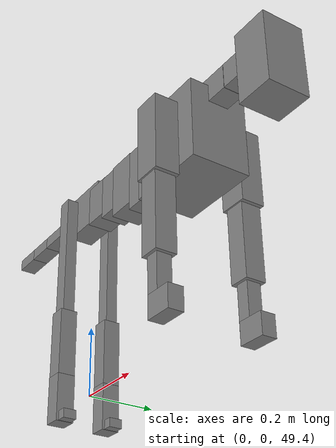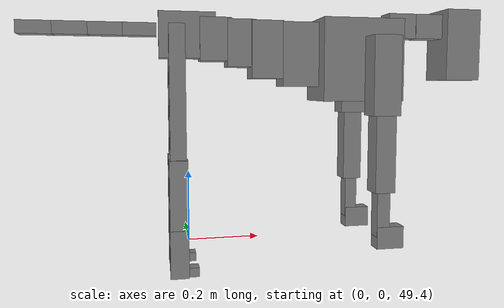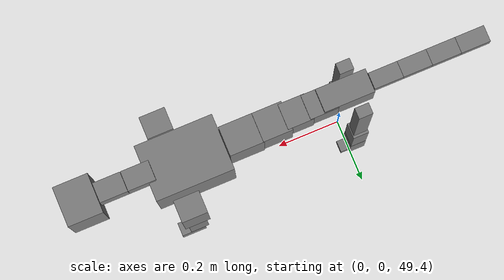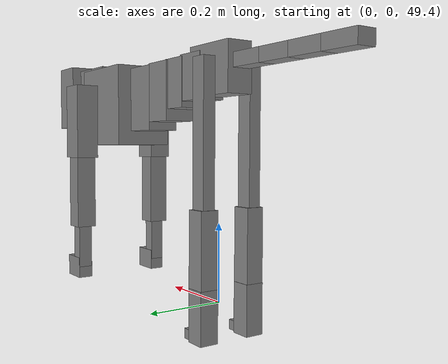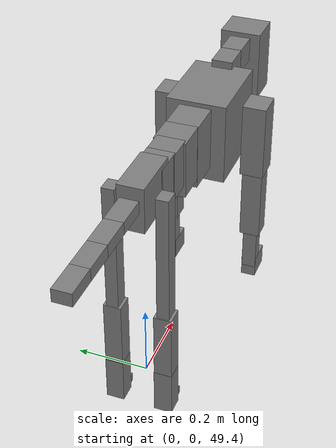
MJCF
<mujoco model="dog">

    <default>
        <joint armature="0.02" stiffness="1" damping="0.2" limited="true"/>
        <geom condim="3" friction="1 0.05 0.05" margin="0.01"/>
        <motor ctrllimited="true" ctrlrange="-1.0 1.0" forcelimited="true" gear="50"/>
    </default>

    <compiler inertiafromgeom="true" angle="radian"/>

    <option timestep="0.016" iterations="50" tolerance="1e-10" solver="Newton" jacobian="dense" cone="pyramidal"/>

    <size nconmax="20000" njmax="60000" nstack="5000000"/>
    <visual>
        <map force="0.1" zfar="30"/>
        <rgba haze="0.15 0.25 0.35 1"/>
        <quality shadowsize="2048"/>
        <global offwidth="800" offheight="800"/>
    </visual>

    <asset>
        <texture type="skybox" builtin="gradient" rgb1="0.3 0.5 0.7" rgb2="0 0 0" width="512" height="512"/>
        <texture name="texplane" type="2d" builtin="checker" rgb1=".2 .3 .4" rgb2=".1 0.15 0.2" width="512" height="512"
                 mark="cross" markrgb=".8 .8 .8"/>
        <texture name="texgeom" type="cube" builtin="flat" mark="cross" width="127" height="1278" rgb1="0.8 0.6 0.4"
                 rgb2="0.8 0.6 0.4" markrgb="1 1 1" random="0.01"/>

        <material name="matplane" reflectance="0.3" texture="texplane" texrepeat="1 1" texuniform="true"/>
        <material name="matgeom" texture="texgeom" texuniform="true" rgba="0.8 0.6 .4 1"/>
    </asset>

    <worldbody>
        <geom name="floor" pos="0 0 0" size="0 0 .25" type="plane" material="matplane" condim="3"/>

        <light directional="false" diffuse=".2 .2 .2" specular="0 0 0" pos="0 0 5" dir="0 0 -1" castshadow="false"/>
        <light mode="targetbodycom" target="torso" directional="false" diffuse=".8 .8 .8" specular="0.3 0.3 0.3"
               pos="0 0 4.0" dir="0 0 -1"/>

        <body name="root" pos="0 0 50">
            <freejoint name="root_1"/>
            <geom type="box" pos="0 0 -0.02" size="0.0774  0.0358  0.063" density="2030"/>

            <body name="spine1" pos="0.054 0 0">
                <joint name="spine1_y" axis="0 1 0" range="0 0.7" limited="true"/>
                <geom type="box" pos="0.02375 0 -0.03" size="0.04375  0.0375  0.05985" density="2030"/>

                <body name="spine2" pos="0.0612 0 0">
                    <joint name="spine2_y" axis="0 1 0" range="-0.15 0.15" limited="true"/>
                    <geom type="box" pos="0.03555  0  -0.04" size="0.04055  0.039  0.06615" density="2030"/>

                    <body name="spine3" pos="0.0730 0 0">
                        <joint name="spine3_y" axis="0 1 0" range="-0.15 0.15" limited="true"/>
                        <geom type="box" pos="0.03555  0  -0.057" size="0.04555  0.0445  0.081" density="2030"/>

                        <body name="spine4" pos="0.0780 0 0">
                            <joint name="spine4_y" axis="0 1 0" range="-0.15 0.15" limited="true"/>
                            <geom type="box" pos="0.05265  0  -0.07" size="0.05265  0.045  0.09135" density="2030"/>

                            <body name="torso" pos="0.1082 0 0">
                                <joint name="torso_y" axis="0 1 0" range="-0.15 0.15" limited="true"/>
                                <geom type="box" pos="0.11925  0  -0.085" size="0.11925  0.085  0.11745"
                                      density="2030"/>

                                <body name="neck1" pos="0.2160  0   0.0180">
                                    <joint name="neck1_y" axis="0 1 0" range="-1.2  -1" limited="true"/>
                                    <geom type="box" pos="0.0423  0  0" size="0.0423  0.03  0.036" density="2325"/>

                                    <body name="neck2" pos="0.0853  0  0">
                                        <joint name="neck2_y" axis="0 1 0" range="0.1  0" limited="true"/>
                                        <geom type="box" pos="0.0423  0  0" size="0.0423  0.03  0.036" density="2325"/>

                                        <body name="head" pos="0.0853  0  0">
                                            <joint name="head_y" axis="0 1 0" range="-0.3  -0.2" limited="true"/>
                                            <geom type="box" pos="0.0531  0  -0.055" size="0.0531  0.06  0.1044"
                                                  density="4030"/>

                                        </body>
                                    </body>
                                </body>

                                <body name="front_shoulder" pos="0.156  0   -0.0480">
                                    <joint name="front_shoulder_y" axis="0 1 0" range="-1 1.5" limited="true"/>
                                    <geom type="box" pos="0 0.13 -0.0834" size="0.0396  0.0339  0.1100" density="1158"/>
                                    <geom type="box" pos="0 -0.13 -0.0834" size="0.0396  0.0339  0.1100"
                                          density="1158"/>

                                    <body name="front_elbow" pos="0  0  -0.1668">
                                        <joint name="front_elbow_y" axis="0 1 0" range="-2 0" limited="true"/>
                                        <geom type="box" pos="0 0.13 -0.1202" size="0.0289  0.0295  0.1202"
                                              density="1081"/>
                                        <geom type="box" pos="0 -0.13 -0.1202" size="0.0289  0.0295  0.1202"
                                              density="1081"/>

                                        <body name="front_wrist" pos="0  0  -0.2404">
                                            <joint name="front_wrist_y" axis="0 1 0" range="-0.2 0" limited="true"/>
                                            <geom type="box" pos="0 0.13 -0.0563" size="0.0187  0.0207  0.0695"
                                                  density="1664"/>
                                            <geom type="box" pos="0 -0.13 -0.0563" size="0.0187  0.0207  0.0695"
                                                  density="1664"/>

                                            <body name="front_finger_end" pos="0  0  -0.1126">
                                                <joint name="front_finger_y" axis="0 1 0" range="-0.4 1"
                                                       limited="true"/>
                                                <geom type="box" pos="0.0213  0.13  -0.0160"
                                                      size="0.0391  0.0213  0.0310" density="1515"/>
                                                <geom type="box" pos="0.0213  -0.13  -0.0160"
                                                      size="0.0391  0.0213  0.0310" density="1515"/>

                                            </body>

                                        </body>
                                    </body>
                                </body>

                            </body>
                        </body>
                    </body>
                </body>
            </body>

            <body name="back_hip" pos="-0.03 0 -0.018">
                <joint name="back_hip_y" axis="0 1 0" range="-1.5 0.3" limited="true"/>
                <geom type="box" pos="0 0.07 -0.1784" size="0.0217  0.0170  0.2012" density="1154"/>
                <geom type="box" pos="0 -0.07 -0.1784" size="0.0217  0.0170  0.2012" density="1154"/>

                <body name="back_knee" pos="0  0  -0.3568">
                    <joint name="back_knee_y" axis="0 1 0" range="0 2.8" limited="true"/>
                    <geom type="box" pos="0 0.07 -0.0934" size="0.0251  0.0247  0.1089" density="1227"/>
                    <geom type="box" pos="0 -0.07 -0.0934" size="0.0251  0.0247  0.1089" density="1227"/>

                    <body name="back_ankle" pos="0  0  -0.1868">
                        <joint name="back_ankle_y" axis="0 1 0" range="-2.2 0" limited="true"/>
                        <geom type="box" pos="0 0.07 -0.0547" size="0.0253  0.0253  0.0660" density="1284"/>
                        <geom type="box" pos="0 -0.07 -0.0547" size="0.0253  0.0253  0.0660" density="1284"/>

                        <body name="back_toe_end" pos="0  0  -0.1094">
                            <joint name="back_toe_y" axis="0 1 0" range="-0.4 1" limited="true"/>
                            <geom type="box" pos="0.0186  0.07  0.0024" size="0.0341  0.0186  0.0126" density="1515"/>
                            <geom type="box" pos="0.0186  -0.07  0.0024" size="0.0341  0.0186  0.0126" density="1515"/>

                        </body>
                    </body>
                </body>
            </body>

            <body name="tail1" pos="-0.074 0 -0.006">
                <joint name="tail1_y" axis="0 1 0" range="-0.2 0.2" limited="true"/>
                <geom type="box" pos="-0.0536  0  0" size="0.045  0.025  0.0175" density="1587"/>

                <body name="tail2" pos="-0.09 0 0">
                    <joint name="tail2_y" axis="0 1 0" range="-0.2 0.2" limited="true"/>
                    <geom type="box" pos="-0.0536  0  0" size="0.045  0.025  0.0175" density="1587"/>

                    <body name="tail3" pos="-0.09 0 0">
                        <joint name="tail3_y" axis="0 1 0" range="-0.2 0.2" limited="true"/>
                        <geom type="box" pos="-0.0536  0  0" size="0.045  0.025  0.0175" density="1587"/>

                        <body name="tail4" pos="-0.09 0 0">
                            <joint name="tail4_y" axis="0 1 0" range="-0.2 0.2" limited="true"/>
                            <geom type="box" pos="-0.0536  0  0" size="0.045  0.025  0.0175" density="1587"/>

                        </body>
                    </body>
                </body>
            </body>
        </body>
    </worldbody>

    <actuator>
        <motor joint="spine1_y" forcerange="-150 150     "/>
        <motor joint="spine2_y" forcerange="-150 150     "/>
        <motor joint="spine3_y" forcerange="-150 150     "/>
        <motor joint="spine4_y" forcerange="-150 150     "/>
        <motor joint="torso_y" forcerange="-150 150     "/>
        <motor joint="neck1_y" forcerange="-100 100       "/>
        <motor joint="neck2_y" forcerange="-100 100       "/>
        <motor joint="head_y" forcerange="-150 150       "/>
        <motor joint="front_shoulder_y" forcerange="-158.76 167.01"/>
        <motor joint="front_elbow_y" forcerange="-131.07 183.83"/>
        <motor joint="front_wrist_y" forcerange="-71.63 94.27"/>
        <motor joint="front_finger_y" forcerange="-47.57 26.19"/>
        <motor joint="back_hip_y" forcerange="-218.21 208.54"/>
        <motor joint="back_knee_y" forcerange="-207.09 352.54"/>
        <motor joint="back_angle_y" forcerange="-147.90 156.56"/>
        <motor joint="back_toe_y" forcerange="-40.87 27.83"/>
        <motor joint="tail1_y" forcerange="-50 50     "/>
        <motor joint="tail2_y" forcerange="-50 50     "/>
        <motor joint="tail3_y" forcerange="-50 50     "/>
        <motor joint="tail4_y" forcerange="-50 50     "/>
    </actuator>
</mujoco>
